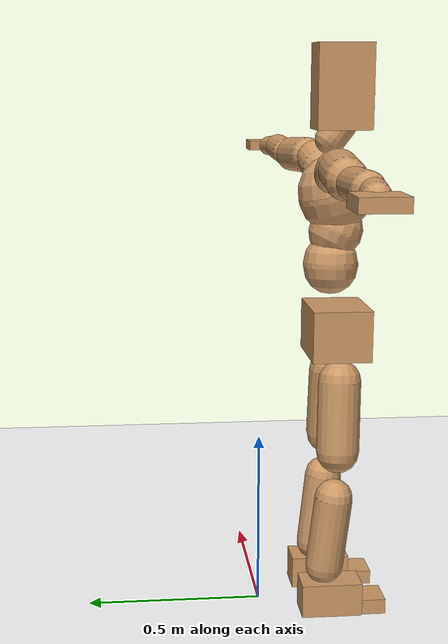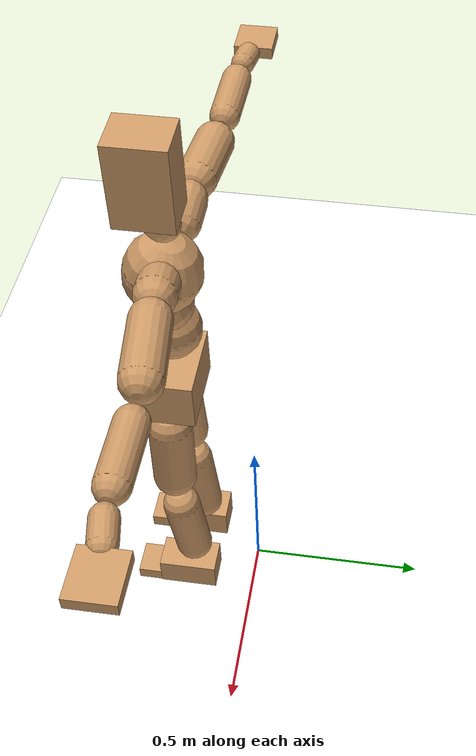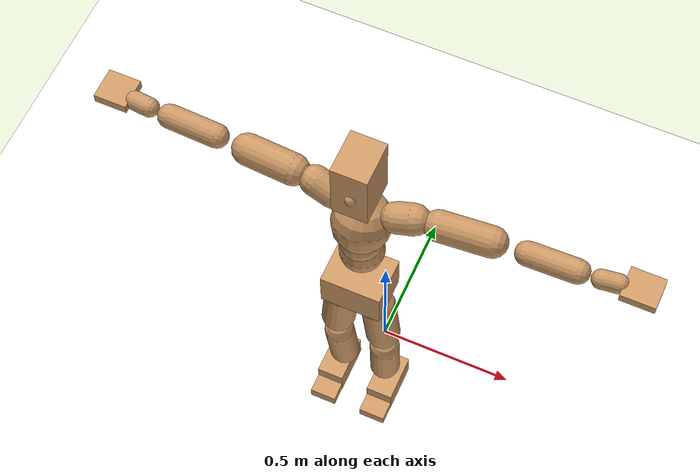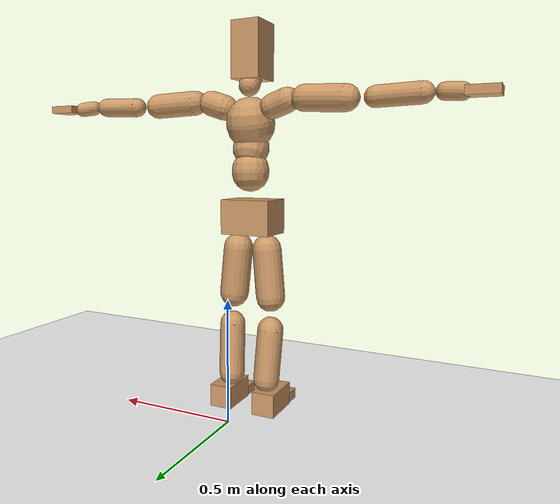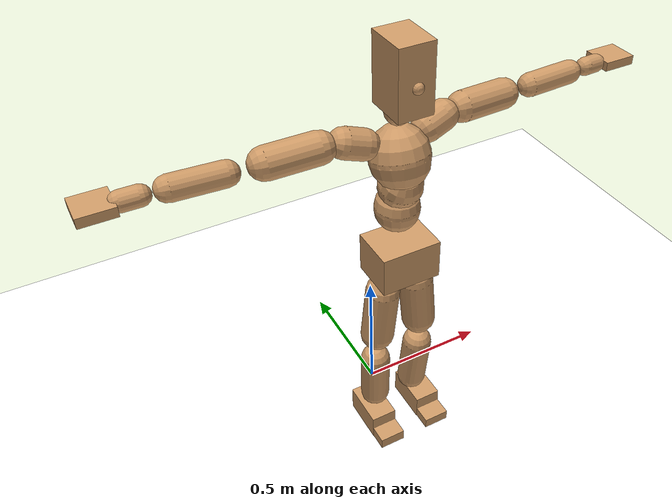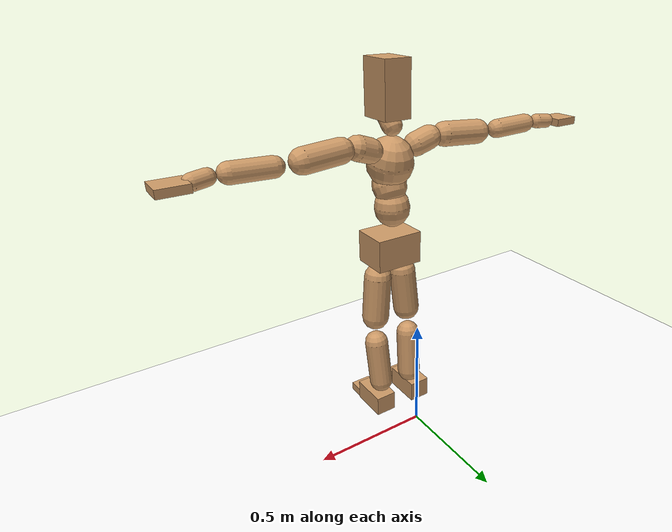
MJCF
<mujoco model="humanoid">
  <option integrator="implicitfast" />

  <visual>
    <global offwidth="1280" offheight="960" />
    <headlight active="1" ambient="0.34 0.34 0.34" diffuse="0.5 0.5 0.5" />
  </visual>

  <default>
    <joint damping="2" stiffness="2" armature="0.01" limited="true" solimplimit="0 .99 .01" />
    <geom condim="1" friction="0.7 0.005 0.0001" solimp=".99 .99 .003" solref="0.015 1" margin="0.001" rgba="0.8 0.6 .4 1" />
    <default class="smplcontact">
      <geom condim="3" friction="1. 0.005 0.0001" solref="0.015 1" solimp="0.98 0.98 0.001" priority="1" />
    </default>
    <default class="stiff_medium">
      <joint stiffness="10" />
    </default>
    <default class="stiff_medium_higher">
      <joint stiffness="50" />
    </default>
    <default class="stiff_high">
      <joint stiffness="100" />
    </default>
  </default>

  <asset>
    <texture type="skybox" builtin="gradient" rgb1="0.99 0.99 0.99" rgb2="0.608 0.828 0.892" width="100" />
    <texture builtin="flat" height="1278" mark="cross" markrgb="1 1 1" name="texgeom" random="0.01" rgb1="0.8 0.6 0.4" rgb2="0.8 0.6 0.4" type="cube" width="127" />
    <texture name="texplane" type="2d" builtin="checker" markrgb="1 1 1" rgb1="0.756 0.772 0.76" rgb2="0.6 0.6 0.6" width="100" height="100" />
    <material name="MatPlane" reflectance="0.5" texture="texplane" texrepeat="1 1" texuniform="true" />
    <material name="geom" texture="texgeom" texuniform="true" />
  </asset>

  <worldbody>
    <light name="tracking_light" pos="0 0 7" dir="0 0 -1" directional="true" cutoff="100" exponent="1" diffuse="1 1 1" specular="0.1 0.1 0.1" mode="trackcom" />
    <camera name="back" pos="0 3 2.4" xyaxes="-1 0 0 0 -1 2" mode="trackcom" />
    <camera name="side" pos="-3 0 2.4" xyaxes="0 -1 0 1 0 2" mode="trackcom" />
    <camera name="front_side" pos="-2.8 -2.8 0.8" xyaxes="0.5 -0.5 0 0.1 0.1 1" mode="trackcom" />
    <geom condim="3" name="floor" pos="0 0 0" rgba="1 1 1 1" size="100 100 .2" type="plane" material="MatPlane" />
    <body name="Pelvis" pos="-0.0018 -0.2233 0.825587" euler="90 0 0">
      <site name="Pelvis" size="0.01" />
      <freejoint name="Pelvis" />
      <geom type="box" pos="-0.0000 -0.0121 -0.0055" size="0.1069 0.0722 0.083" quat="1.0000 0.0000 0.0000 0.0000" density="3165.830099" name="Pelvis" />
      <body name="L_Hip" pos="0.0608125 -0.079975 -0.00595">
        <joint name="L_Hip_x" type="hinge" pos="0 0 0" axis="1 0 0" stiffness="8.018564387755102" range="-160.0 22.92" class="stiff_medium" damping="11.360360262787497" armature="0.007153277434128083"/>
        <joint name="L_Hip_y" type="hinge" pos="0 0 0" axis="0 1 0" stiffness="8.040343265306122" range="-70.0 70.0" class="stiff_medium" damping="8.207855033549667" armature="0.008378856726485999"/>
        <joint name="L_Hip_z" type="hinge" pos="0 0 0" axis="0 0 1" stiffness="8.038478673469386" range="-28.65 90.0" class="stiff_medium" damping="7.581991637464593" armature="0.0071514274685227155"/>
        <geom type="capsule" density="2040.816327" fromto="0.0060375 -0.065625 -0.0007875 0.023975 -0.262675 -0.00315" size="0.0615" name="L_Hip" />
        <body name="L_Knee" pos="0.0300125 -0.3283 -0.0039375">
          <joint name="L_Knee_x" type="hinge" pos="0 0 0" axis="1 0 0" range="-5.16 171.89" damping="6.187481263356624" armature="0.007345812746914755" stiffness="1.6286882448979592"/>
          <joint name="L_Knee_y" type="hinge" pos="0 0 0" axis="0 1 0" range="-4.58 6.88" damping="6.664577128501176" armature="0.008600571968275737" stiffness="1.6138675306122447"/>
          <joint name="L_Knee_z" type="hinge" pos="0 0 0" axis="0 0 1" range="-6.88 4.58" damping="6.195974658750661" armature="0.007336542514311982" stiffness="1.635226244897959"/>
          <geom type="capsule" density="1234.567901" fromto="-0.0023625 -0.06965 -0.0076125 -0.0095375 -0.2786 -0.030625" size="0.0541" name="L_Knee" />
          <body name="L_Ankle" pos="-0.0119 -0.34825 -0.0382375">
            <joint name="L_Ankle_x" type="hinge" pos="0 0 0" axis="1 0 0" range="-45.84 45.84" class="stiff_medium" damping="5.161808139893109" armature="0.008458478225834428" stiffness="8.750018673469388"/>
            <joint name="L_Ankle_y" type="hinge" pos="0 0 0" axis="0 1 0" range="-74.48 22.92" class="stiff_medium" damping="2.5896377165389355" armature="0.008515827848834851" stiffness="8.750011836734695"/>
            <joint name="L_Ankle_z" type="hinge" pos="0 0 0" axis="0 0 1" range="-4.58 4.58" class="stiff_medium" damping="5.292201995620587" armature="0.008891238718238261" stiffness="8.75"/>
            <geom type="box" pos="0.0203875 -0.0209125 0.021175" size="0.0483 0.0464 0.085" quat="1.0000 0.0000 0.0000 0.0000" density="449.071558" name="L_Ankle" class="smplcontact" />
            <body name="L_Toe" pos="0.0231 -0.048825 0.104388">
              <joint name="L_Toe_x" type="hinge" pos="0 0 0" axis="1 0 0" range="-91.67 22.92" armature="0.009108934582591792" damping="1.7855327227209046" stiffness="1.75"/>
              <joint name="L_Toe_y" type="hinge" pos="0 0 0" axis="0 1 0" range="-4.58 4.58" armature="0.009372172477213336" damping="1.811148908020726" stiffness="1.75"/>
              <joint name="L_Toe_z" type="hinge" pos="0 0 0" axis="0 0 1" range="-4.58 4.58" armature="0.009904425331426178" damping="1.8618670376799633" stiffness="1.75"/>
              <geom type="box" pos="-0.002625 0.0048125 0.0217" size="0.0478 0.02 0.0496" quat="1.0000 0.0000 0.0000 0.0000" density="423.206892" name="L_Toe" class="smplcontact" />
            </body>
          </body>
        </body>
      </body>
      <body name="R_Hip" pos="-0.0592375 -0.0791875 -0.0037625">
        <joint name="R_Hip_x" type="hinge" pos="0 0 0" axis="1 0 0" stiffness="8.018564387755102" range="-160.0 22.92" class="stiff_medium" damping="11.360360262787497" armature="0.007153277434128083"/>
        <joint name="R_Hip_y" type="hinge" pos="0 0 0" axis="0 1 0" stiffness="8.040343265306122" range="-70.0 70.0" class="stiff_medium" damping="8.207855033549667" armature="0.008378856726485999"/>
        <joint name="R_Hip_z" type="hinge" pos="0 0 0" axis="0 0 1" stiffness="8.038478673469386" range="-90.0 28.65" class="stiff_medium" damping="7.581991637464593" armature="0.0071514274685227155"/>
        <geom type="capsule" density="2040.816327" fromto="-0.0067375 -0.0669375 -0.001575 -0.026775 -0.267838 -0.0062125" size="0.0606" name="R_Hip" />
        <body name="R_Knee" pos="-0.0335125 -0.334775 -0.0077875">
          <joint name="R_Knee_x" type="hinge" pos="0 0 0" axis="1 0 0" range="-5.16 171.89" damping="6.187481263356624" armature="0.007345812746914755" stiffness="1.6286882448979592"/>
          <joint name="R_Knee_y" type="hinge" pos="0 0 0" axis="0 1 0" range="-6.88 4.58" damping="6.664577128501176" armature="0.008600571968275737" stiffness="1.6138675306122447"/>
          <joint name="R_Knee_z" type="hinge" pos="0 0 0" axis="0 0 1" range="-4.58 6.88" damping="6.195974658750661" armature="0.007336542514311982" stiffness="1.635226244897959"/>
          <geom type="capsule" density="1234.567901" fromto="0.0028 -0.0697375 -0.0074375 0.011025 -0.278863 -0.029575" size="0.0541" name="R_Knee" />
          <body name="R_Ankle" pos="0.013825 -0.3486 -0.0370125">
            <joint name="R_Ankle_x" type="hinge" pos="0 0 0" axis="1 0 0" range="-45.84 45.84" class="stiff_medium" damping="5.161808139893109" armature="0.008458478225834428" stiffness="8.750018673469388"/>
            <joint name="R_Ankle_y" type="hinge" pos="0 0 0" axis="0 1 0" range="-22.92 74.48" class="stiff_medium" damping="2.5896377165389355" armature="0.008515827848834851" stiffness="8.750011836734695"/>
            <joint name="R_Ankle_z" type="hinge" pos="0 0 0" axis="0 0 1" range="-4.58 4.58" class="stiff_medium" damping="5.292201995620587" armature="0.008891238718238261" stiffness="8.75"/>
            <geom type="box" pos="-0.01855 -0.015225 0.0224" size="0.0483 0.0478 0.0865" quat="1.0000 0.0000 0.0000 0.0000" density="434.700981" name="R_Ankle" class="smplcontact" />
            <body name="R_Toe" pos="-0.022225 -0.0420875 0.107888">
              <joint name="R_Toe_x" type="hinge" pos="0 0 0" axis="1 0 0" range="-91.67 22.92" armature="0.009108934582591792" damping="1.7855327227209046" stiffness="1.75"/>
              <joint name="R_Toe_y" type="hinge" pos="0 0 0" axis="0 1 0" range="-4.58 4.58" armature="0.009372172477213336" damping="1.811148908020726" stiffness="1.75"/>
              <joint name="R_Toe_z" type="hinge" pos="0 0 0" axis="0 0 1" range="-4.58 4.58" armature="0.009904425331426178" damping="1.8618670376799633" stiffness="1.75"/>
              <geom type="box" pos="0.003675 0.0039375 0.0198625" size="0.0479 0.0216 0.0493" quat="1.0000 0.0000 0.0000 0.0000" density="407.384095" name="R_Toe" class="smplcontact" />
            </body>
          </body>
        </body>
      </body>
      <body name="Torso" pos="-0.0025 0.109 -0.0267">
        <joint name="Torso_x" type="hinge" pos="0 0 0" axis="1 0 0" range="-25.78 57.3" class="stiff_medium" damping="15.601174334598195" armature="0.010476265558935353" stiffness="10.325844081632653"/>
        <joint name="Torso_y" type="hinge" pos="0 0 0" axis="0 1 0" range="-57.3 57.3" class="stiff_high" damping="22.821338610517834" armature="0.012668353656497757" stiffness="102.77844897959183"/>
        <joint name="Torso_z" type="hinge" pos="0 0 0" axis="0 0 1" range="-34.38 34.38" class="stiff_high" damping="21.414857312023486" armature="0.011223378132891124" stiffness="102.15197872340424"/>
        <geom type="capsule" density="2040.816327" fromto="0.0025 0.0608 0.0005 0.003 0.0743 0.0006" size="0.0769" name="Torso" />
        <body name="Spine" pos="0.0055 0.1352 0.0011">
          <joint name="Spine_x" type="hinge" pos="0 0 0" axis="1 0 0" stiffness="10.390365918367348" range="-25.78 57.3" class="stiff_medium" damping="15.726774537984076" armature="0.010579519926301016"/>
          <joint name="Spine_y" type="hinge" pos="0 0 0" axis="0 1 0" stiffness="10.39918551020408" range="-57.3 57.3" class="stiff_high" damping="9.18896997574016" armature="0.012686866367473132"/>
          <joint name="Spine_z" type="hinge" pos="0 0 0" axis="0 0 1" stiffness="20.94420693877551" range="-34.38 34.38" class="stiff_high" damping="13.309204568844795" armature="0.011746481097584333"/>
          <geom type="capsule" density="2040.816327" fromto="0.0007 0.0238 0.0114 0.0008 0.0291 0.014" size="0.0755" name="Spine" />
          <body name="Chest" pos="0.0015 0.0529 0.0254">
            <joint name="Chest_x" type="hinge" pos="0 0 0" axis="1 0 0" stiffness="10.58973530612245" range="-25.78 57.3" class="stiff_medium" damping="15.923502909070246" armature="0.01064166541426727"/>
            <joint name="Chest_y" type="hinge" pos="0 0 0" axis="0 1 0" stiffness="11.123088958333334" range="-57.3 57.3" class="stiff_high" damping="9.504893386205909" armature="0.01269080336821822"/>
            <joint name="Chest_z" type="hinge" pos="0 0 0" axis="0 0 1" stiffness="21.003702448979592" range="-34.38 34.38" class="stiff_high" damping="13.458190566120908" armature="0.01197691572037479"/>
            <geom type="capsule" density="2040.816327" fromto="-0.0009 0.0682 -0.0173 -0.001 0.0833 -0.0212" size="0.1002" name="Chest" />
            <body name="Neck" pos="-0.0028 0.2139 -0.0429">
              <joint name="Neck_x" type="hinge" pos="0 0 0" axis="1 0 0" range="-28.65 57.3" class="stiff_medium_higher" damping="10.0" armature="0.01" stiffness="50.0"/>
              <joint name="Neck_y" type="hinge" pos="0 0 0" axis="0 1 0" range="-40.11 40.11" class="stiff_medium_higher" damping="10.0" armature="0.01" stiffness="50.0"/>
              <joint name="Neck_z" type="hinge" pos="0 0 0" axis="0 0 1" range="-40.11 40.11" class="stiff_medium_higher" damping="9.999999999999996" armature="0.009999999999999992" stiffness="50.0"/>
              <geom type="capsule" density="1000" fromto="0.001 0.013 0.0103 0.0041 0.052 0.0411" size="0.0436" name="Neck" />
              <body name="Head" pos="0.0052 0.065 0.0513">
                <joint name="Head_x" type="hinge" pos="0 0 0" axis="1 0 0" range="-28.65 57.3" class="stiff_medium_higher" damping="2.000000000000005" armature="0.010000000000000049" stiffness="50.0"/>
                <joint name="Head_y" type="hinge" pos="0 0 0" axis="0 1 0" range="-40.11 40.11" class="stiff_medium_higher" damping="2.0" armature="0.01" stiffness="50.0"/>
                <joint name="Head_z" type="hinge" pos="0 0 0" axis="0 0 1" range="-40.11 40.11" class="stiff_medium_higher" damping="2.000000000000002" armature="0.010000000000000024" stiffness="50.0"/>
                <geom type="box" pos="-0.0042 0.0876 -0.0116" size="0.0606 0.1154 0.076" quat="1.0000 0.0000 0.0000 0.0000" density="1018.069894" name="Head" />
                <geom type="capsule" name="nose" size="0.02 0.01" pos="0 0.07 0.05" quat="1 0 0 0" mass="0" contype="0" conaffinity="0" />
              </body>
            </body>
            <body name="L_Thorax" pos="0.08668 0.13387 -0.03751">
              <joint name="L_Thorax_x" type="hinge" pos="0 0 0" axis="1 0 0" range="-10.89 4.58" class="stiff_medium_higher" damping="23.48495305351723" armature="0.011814903262347106" stiffness="58.352468877551026"/>
              <joint name="L_Thorax_y" type="hinge" pos="0 0 0" axis="0 1 0" range="-28.65 17.19" class="stiff_medium_higher" damping="24.434884191521103" armature="0.012759387174304943" stiffness="58.49257857142858"/>
              <joint name="L_Thorax_z" type="hinge" pos="0 0 0" axis="0 0 1" range="-31.51 40.11" class="stiff_medium_higher" damping="24.435380867856832" armature="0.012760243243334086" stiffness="58.491032142857144"/>
              <geom type="capsule" density="1000" fromto="0.02002 0.00671 -0.00198 0.08008 0.02684 -0.00781" size="0.0521" name="L_Thorax" />
              <body name="L_Shoulder" pos="0.1001 0.03355 -0.00979">
                <joint name="L_Shoulder_x" type="hinge" pos="0 0 0" axis="1 0 0" range="-97.4 97.4" class="stiff_medium" damping="6.925509502213979" armature="0.01143614113174845" stiffness="11.64988"/>
                <joint name="L_Shoulder_y" type="hinge" pos="0 0 0" axis="0 1 0" range="-108.86 80.21" class="stiff_medium" damping="7.316560324521946" armature="0.01272235970311689" stiffness="11.68809530612245"/>
                <joint name="L_Shoulder_z" type="hinge" pos="0 0 0" axis="0 0 1" range="-97.4 85.94" class="stiff_medium" damping="7.3161640813468045" armature="0.012723435702067624" stiffness="11.685841020408162"/>
                <geom type="capsule" density="1000" fromto="0.05709 -0.00286 -0.00605 0.22847 -0.01122 -0.0242" size="0.0517" name="L_Shoulder" />
                <body name="L_Elbow" pos="0.28556 -0.01408 -0.03025">
                  <joint name="L_Elbow_x" type="hinge" pos="0 0 0" axis="1 0 0" range="-17.19 4.58" damping="5.6013963449448445" armature="0.010847020977712885" stiffness="2.314046673469388"/>
                  <joint name="L_Elbow_y" type="hinge" pos="0 0 0" axis="0 1 0" range="-180.0 17.19" damping="6.02379848090798" armature="0.012542680731684373" stiffness="2.3144110204081634"/>
                  <joint name="L_Elbow_z" type="hinge" pos="0 0 0" axis="0 0 1" range="-100.84 4.58" damping="6.024346472417807" armature="0.012548321640758902" stiffness="2.313791530612245"/>
                  <geom type="capsule" density="1000" fromto="0.05478 0.00198 -0.00022 0.21934 0.00792 -0.00099" size="0.0405" name="L_Elbow" />
                  <body name="L_Wrist" pos="0.27412 0.0099 -0.00132">
                    <joint name="L_Wrist_x" type="hinge" pos="0 0 0" axis="1 0 0" range="-180.0 22.92" armature="0.010707540477697494" damping="2.1901175856847654" stiffness="2.2398304489795917"/>
                    <joint name="L_Wrist_y" type="hinge" pos="0 0 0" axis="0 1 0" range="-17.19 17.19" armature="0.011962634992803567" damping="2.317938796584479" stiffness="2.245675918367347"/>
                    <joint name="L_Wrist_z" type="hinge" pos="0 0 0" axis="0 0 1" range="-22.92 22.92" armature="0.01203185682964623" damping="2.3234148559287946" stiffness="2.2433181632653056"/>
                    <geom type="capsule" density="1000" fromto="0.01848 -0.00176 -0.0033 0.07392 -0.00715 -0.0132" size="0.0318" name="L_Wrist" class="smplcontact" />
                    <body name="L_Hand" pos="0.0924 -0.00902 -0.01639">
                      <joint name="L_Hand_x" type="hinge" pos="0 0 0" axis="1 0 0" range="-17.19 17.19" armature="0.010091488937093013" damping="2.107191289921474" stiffness="2.1999999999999997"/>
                      <joint name="L_Hand_y" type="hinge" pos="0 0 0" axis="0 1 0" range="-51.57 51.57" armature="0.011106432471592782" damping="2.210617625800723" stiffness="2.1999999999999997"/>
                      <joint name="L_Hand_z" type="hinge" pos="0 0 0" axis="0 0 1" range="-91.67 91.67" armature="0.01137697953796951" damping="2.2373803871283453" stiffness="2.1999999999999997"/>
                      <geom type="box" pos="0.05423 0.0011 -0.00638" size="0.0585 0.0158 0.0538" quat="1.0000 0.0000 0.0000 0.0000" density="400.552564" name="L_Hand" class="smplcontact" />
                    </body>
                  </body>
                </body>
              </body>
            </body>
            <body name="R_Thorax" pos="-0.08998 0.13068 -0.04246">
              <joint name="R_Thorax_x" type="hinge" pos="0 0 0" axis="1 0 0" range="-10.89 4.58" class="stiff_medium_higher" damping="23.48495305351723" armature="0.011814903262347106" stiffness="58.352468877551026"/>
              <joint name="R_Thorax_y" type="hinge" pos="0 0 0" axis="0 1 0" range="-17.19 28.65" class="stiff_medium_higher" damping="24.434884191521103" armature="0.012759387174304943" stiffness="58.49257857142858"/>
              <joint name="R_Thorax_z" type="hinge" pos="0 0 0" axis="0 0 1" range="-40.11 31.51" class="stiff_medium_higher" damping="24.435380867856832" armature="0.012760243243334086" stiffness="58.491032142857144"/>
              <geom type="capsule" density="1000" fromto="-0.02112 0.00715 -0.00198 -0.08448 0.0286 -0.00803" size="0.0511" name="R_Thorax" />
              <body name="R_Shoulder" pos="-0.1056 0.03586 -0.01001">
                <joint name="R_Shoulder_x" type="hinge" pos="0 0 0" axis="1 0 0" range="-97.4 97.4" class="stiff_medium" damping="6.925509502213979" armature="0.01143614113174845" stiffness="11.64988"/>
                <joint name="R_Shoulder_y" type="hinge" pos="0 0 0" axis="0 1 0" range="-80.21 108.86" class="stiff_medium" damping="7.316560324521946" armature="0.01272235970311689" stiffness="11.68809530612245"/>
                <joint name="R_Shoulder_z" type="hinge" pos="0 0 0" axis="0 0 1" range="-85.94 97.4" class="stiff_medium" damping="7.3161640813468045" armature="0.012723435702067624" stiffness="11.685841020408162"/>
                <geom type="capsule" density="1000" fromto="-0.05577 -0.00297 -0.00473 -0.2233 -0.01177 -0.01881" size="0.0531" name="R_Shoulder" />
                <body name="R_Elbow" pos="-0.27907 -0.01463 -0.02354">
                  <joint name="R_Elbow_x" type="hinge" pos="0 0 0" axis="1 0 0" range="-17.19 4.58" damping="5.6013963449448445" armature="0.010847020977712885" stiffness="2.314046673469388"/>
                  <joint name="R_Elbow_y" type="hinge" pos="0 0 0" axis="0 1 0" range="-17.19 180.0" damping="6.02379848090798" armature="0.012542680731684373" stiffness="2.3144110204081634"/>
                  <joint name="R_Elbow_z" type="hinge" pos="0 0 0" axis="0 0 1" range="-4.58 100.84" damping="6.024346472417807" armature="0.012548321640758902" stiffness="2.313791530612245"/>
                  <geom type="capsule" density="1000" fromto="-0.05621 0.00176 -0.00121 -0.22462 0.00682 -0.00484" size="0.0408" name="R_Elbow" />
                  <body name="R_Wrist" pos="-0.28083 0.00858 -0.00616">
                    <joint name="R_Wrist_x" type="hinge" pos="0 0 0" axis="1 0 0" range="-180.0 22.92" armature="0.010707540477697494" damping="2.1901175856847654" stiffness="2.2398304489795917"/>
                    <joint name="R_Wrist_y" type="hinge" pos="0 0 0" axis="0 1 0" range="-17.19 17.19" armature="0.011962634992803567" damping="2.317938796584479" stiffness="2.245675918367347"/>
                    <joint name="R_Wrist_z" type="hinge" pos="0 0 0" axis="0 0 1" range="-22.92 22.92" armature="0.01203185682964623" damping="2.3234148559287946" stiffness="2.2433181632653056"/>
                    <geom type="capsule" density="1000" fromto="-0.01859 -0.00132 -0.00231 -0.07447 -0.00539 -0.00913" size="0.0326" name="R_Wrist" class="smplcontact" />
                    <body name="R_Hand" pos="-0.09306 -0.00671 -0.01133">
                      <joint name="R_Hand_x" type="hinge" pos="0 0 0" axis="1 0 0" range="-17.19 17.19" armature="0.010091488937093013" damping="2.107191289921474" stiffness="2.1999999999999997"/>
                      <joint name="R_Hand_y" type="hinge" pos="0 0 0" axis="0 1 0" range="-51.57 51.57" armature="0.011106432471592782" damping="2.210617625800723" stiffness="2.1999999999999997"/>
                      <joint name="R_Hand_z" type="hinge" pos="0 0 0" axis="0 0 1" range="-91.67 91.67" armature="0.01137697953796951" damping="2.2373803871283453" stiffness="2.1999999999999997"/>
                      <geom type="box" pos="-0.05082 -0.00099 -0.00869" size="0.0569 0.0164 0.0546" quat="1.0000 0.0000 0.0000 0.0000" density="403.679611" name="R_Hand" class="smplcontact" />
                    </body>
                  </body>
                </body>
              </body>
            </body>
          </body>
        </body>
      </body>
    </body>
  </worldbody>
  <actuator>
    <general name="L_Hip_x" joint="L_Hip_x" biastype="affine" gainprm="230.3974619502181" biasprm="-172.65954561631258 -144.33415897959185 -1.5147147017049996" ctrllimited="true" ctrlrange="-1 1" forcerange="-288.6683179591837 288.6683179591837" />
    <general name="L_Hip_y" joint="L_Hip_y" biastype="affine" gainprm="176.8163833423812" biasprm="0.0 -144.7261787755102 -1.6415710067099334" ctrllimited="true" ctrlrange="-1 1" forcerange="-289.4523575510204 289.4523575510204" />
    <general name="L_Hip_z" joint="L_Hip_z" biastype="affine" gainprm="149.81713355526176" biasprm="77.4654963642251 -144.69261612244895 -1.5163983274929185" ctrllimited="true" ctrlrange="-1 1" forcerange="-289.3852322448979 289.3852322448979" />
    <general name="L_Knee_x" joint="L_Knee_x" biastype="affine" gainprm="226.4768283011216" biasprm="213.27580673621011 -146.58194204081633 -1.546870315839156" ctrllimited="true" ctrlrange="-1 1" forcerange="-293.16388408163266 293.16388408163266" />
    <general name="L_Knee_y" joint="L_Knee_y" biastype="affine" gainprm="14.525877693080384" biasprm="2.915315767372154 -145.24807775510203 -1.666144282125294" ctrllimited="true" ctrlrange="-1 1" forcerange="-290.49615551020406 290.49615551020406" />
    <general name="L_Knee_z" joint="L_Knee_z" biastype="affine" gainprm="14.718120281465588" biasprm="-2.953898485808975 -147.17036204081631 -1.5489936646876652" ctrllimited="true" ctrlrange="-1 1" forcerange="-294.34072408163263 294.34072408163263" />
    <general name="L_Ankle_x" joint="L_Ankle_x" biastype="affine" gainprm="63.0047751266266" biasprm="0.0 -78.75016806122449 -1.720602713297703" ctrllimited="true" ctrlrange="-1 1" forcerange="-157.50033612244897 157.50033612244897" />
    <general name="L_Ankle_y" joint="L_Ankle_y" biastype="affine" gainprm="66.93564902394152" biasprm="-35.43328607468609 -78.75010653061226 -1.7264251443592902" ctrllimited="true" ctrlrange="-1 1" forcerange="-157.5002130612245 157.5002130612245" />
    <general name="L_Ankle_z" joint="L_Ankle_z" biastype="affine" gainprm="6.294966279630548" biasprm="0.0 -78.75 -1.764067331873529" ctrllimited="true" ctrlrange="-1 1" forcerange="-157.5 157.5" />
    <general name="L_Toe_x" joint="L_Toe_x" biastype="affine" gainprm="62.999142880599514" biasprm="-37.797286613502195 -63.0 -0.7142130890883619" ctrllimited="true" ctrlrange="-1 1" forcerange="-126.0 126.0" />
    <general name="L_Toe_y" joint="L_Toe_y" biastype="affine" gainprm="5.035973023704439" biasprm="0.0 -63.0 -0.7244595632082904" ctrllimited="true" ctrlrange="-1 1" forcerange="-126.0 126.0" />
    <general name="L_Toe_z" joint="L_Toe_z" biastype="affine" gainprm="5.035973023704439" biasprm="0.0 -63.0 -0.7447468150719854" ctrllimited="true" ctrlrange="-1 1" forcerange="-126.0 126.0" />
    <general name="R_Hip_x" joint="R_Hip_x" biastype="affine" gainprm="230.3974619502181" biasprm="-172.65954561631258 -144.33415897959185 -1.5147147017049996" ctrllimited="true" ctrlrange="-1 1" forcerange="-288.6683179591837 288.6683179591837" />
    <general name="R_Hip_y" joint="R_Hip_y" biastype="affine" gainprm="176.8163833423812" biasprm="0.0 -144.7261787755102 -1.6415710067099334" ctrllimited="true" ctrlrange="-1 1" forcerange="-289.4523575510204 289.4523575510204" />
    <general name="R_Hip_z" joint="R_Hip_z" biastype="affine" gainprm="149.81713355526176" biasprm="-77.4654963642251 -144.69261612244895 -1.5163983274929185" ctrllimited="true" ctrlrange="-1 1" forcerange="-289.3852322448979 289.3852322448979" />
    <general name="R_Knee_x" joint="R_Knee_x" biastype="affine" gainprm="226.4768283011216" biasprm="213.27580673621011 -146.58194204081633 -1.546870315839156" ctrllimited="true" ctrlrange="-1 1" forcerange="-293.16388408163266 293.16388408163266" />
    <general name="R_Knee_y" joint="R_Knee_y" biastype="affine" gainprm="14.525877693080384" biasprm="-2.915315767372154 -145.24807775510203 -1.666144282125294" ctrllimited="true" ctrlrange="-1 1" forcerange="-290.49615551020406 290.49615551020406" />
    <general name="R_Knee_z" joint="R_Knee_z" biastype="affine" gainprm="14.718120281465588" biasprm="2.953898485808975 -147.17036204081631 -1.5489936646876652" ctrllimited="true" ctrlrange="-1 1" forcerange="-294.34072408163263 294.34072408163263" />
    <general name="R_Ankle_x" joint="R_Ankle_x" biastype="affine" gainprm="63.0047751266266" biasprm="0.0 -78.75016806122449 -1.720602713297703" ctrllimited="true" ctrlrange="-1 1" forcerange="-157.50033612244897 157.50033612244897" />
    <general name="R_Ankle_y" joint="R_Ankle_y" biastype="affine" gainprm="66.93564902394152" biasprm="35.43328607468609 -78.75010653061226 -1.7264251443592902" ctrllimited="true" ctrlrange="-1 1" forcerange="-157.5002130612245 157.5002130612245" />
    <general name="R_Ankle_z" joint="R_Ankle_z" biastype="affine" gainprm="6.294966279630548" biasprm="0.0 -78.75 -1.764067331873529" ctrllimited="true" ctrlrange="-1 1" forcerange="-157.5 157.5" />
    <general name="R_Toe_x" joint="R_Toe_x" biastype="affine" gainprm="62.999142880599514" biasprm="-37.797286613502195 -63.0 -0.7142130890883619" ctrllimited="true" ctrlrange="-1 1" forcerange="-126.0 126.0" />
    <general name="R_Toe_y" joint="R_Toe_y" biastype="affine" gainprm="5.035973023704439" biasprm="0.0 -63.0 -0.7244595632082904" ctrllimited="true" ctrlrange="-1 1" forcerange="-126.0 126.0" />
    <general name="R_Toe_z" joint="R_Toe_z" biastype="affine" gainprm="5.035973023704439" biasprm="0.0 -63.0 -0.7447468150719854" ctrllimited="true" ctrlrange="-1 1" forcerange="-126.0 126.0" />
    <general name="Torso_x" joint="Torso_x" biastype="affine" gainprm="179.67210854115288" biasprm="68.16640420338393 -247.8202579591837 -4.160313155892852" ctrllimited="true" ctrlrange="-1 1" forcerange="-371.73038693877555 371.73038693877555" />
    <general name="Torso_y" joint="Torso_y" biastype="affine" gainprm="246.68644747989222" biasprm="0.0 -246.6682775510204 -4.564267722103567" ctrllimited="true" ctrlrange="-1 1" forcerange="-370.0024163265306 370.0024163265306" />
    <general name="Torso_z" joint="Torso_z" biastype="affine" gainprm="147.10968486781817" biasprm="0.0 -245.16474893617018 -4.2829714624046975" ctrllimited="true" ctrlrange="-1 1" forcerange="-367.74712340425526 367.74712340425526" />
    <general name="Spine_x" joint="Spine_x" biastype="affine" gainprm="180.79480363139655" biasprm="68.5923472612135 -249.36878204081634 -4.19380654346242" ctrllimited="true" ctrlrange="-1 1" forcerange="-374.0531730612245 374.0531730612245" />
    <general name="Spine_y" joint="Spine_y" biastype="affine" gainprm="249.59883668861366" biasprm="0.0 -249.58045224489794 -4.59448498787008" ctrllimited="true" ctrlrange="-1 1" forcerange="-374.3706783673469 374.3706783673469" />
    <general name="Spine_z" joint="Spine_z" biastype="affine" gainprm="150.8093979712465" biasprm="0.0 -251.3304832653061 -4.436401522948265" ctrllimited="true" ctrlrange="-1 1" forcerange="-376.9957248979592 376.9957248979592" />
    <general name="Chest_x" joint="Chest_x" biastype="affine" gainprm="184.26387773258654" biasprm="69.90849092598852 -254.15364734693878 -4.246267442418732" ctrllimited="true" ctrlrange="-1 1" forcerange="-381.2304710204082 381.2304710204082" />
    <general name="Chest_y" joint="Chest_y" biastype="affine" gainprm="266.97379921338467" biasprm="0.0 -266.954135 -4.7524466931029545" ctrllimited="true" ctrlrange="-1 1" forcerange="-400.43120250000004 400.43120250000004" />
    <general name="Chest_z" joint="Chest_z" biastype="affine" gainprm="151.23779719887534" biasprm="0.0 -252.0444293877551 -4.486063522040303" ctrllimited="true" ctrlrange="-1 1" forcerange="-378.06664408163266 378.06664408163266" />
    <general name="Neck_x" joint="Neck_x" biastype="affine" gainprm="27.00198885760427" biasprm="9.000662952534757 -36.0 -0.8" ctrllimited="true" ctrlrange="-1 1" forcerange="-72.0 72.0" />
    <general name="Neck_y" joint="Neck_y" biastype="affine" gainprm="25.20185626709732" biasprm="0.0 -36.0 -0.8" ctrllimited="true" ctrlrange="-1 1" forcerange="-72.0 72.0" />
    <general name="Neck_z" joint="Neck_z" biastype="affine" gainprm="25.20185626709732" biasprm="0.0 -36.0 -0.7999999999999997" ctrllimited="true" ctrlrange="-1 1" forcerange="-72.0 72.0" />
    <general name="Head_x" joint="Head_x" biastype="affine" gainprm="18.001325905069514" biasprm="6.000441968356505 -24.0 -0.800000000000002" ctrllimited="true" ctrlrange="-1 1" forcerange="-48.0 48.0" />
    <general name="Head_y" joint="Head_y" biastype="affine" gainprm="16.801237511398213" biasprm="0.0 -24.0 -0.8" ctrllimited="true" ctrlrange="-1 1" forcerange="-48.0 48.0" />
    <general name="Head_z" joint="Head_z" biastype="affine" gainprm="16.801237511398213" biasprm="0.0 -24.0 -0.8000000000000009" ctrllimited="true" ctrlrange="-1 1" forcerange="-48.0 48.0" />
    <general name="L_Thorax_x" joint="L_Thorax_x" biastype="affine" gainprm="18.906370442093692" biasprm="-7.711648189373708 -140.04592530612246 -1.8787962442813786" ctrllimited="true" ctrlrange="-1 1" forcerange="-280.0918506122449 280.0918506122449" />
    <general name="L_Thorax_y" joint="L_Thorax_y" biastype="affine" gainprm="56.157011727582464" biasprm="-14.039252931895616 -140.38218857142857 -1.9547907353216882" ctrllimited="true" ctrlrange="-1 1" forcerange="-280.76437714285714 280.76437714285714" />
    <general name="L_Thorax_z" joint="L_Thorax_z" biastype="affine" gainprm="87.73688584405964" biasprm="10.535286487837375 -140.37847714285715 -1.9548304694285468" ctrllimited="true" ctrlrange="-1 1" forcerange="-280.7569542857143 280.7569542857143" />
    <general name="L_Shoulder_x" joint="L_Shoulder_x" biastype="affine" gainprm="95.06026349386505" biasprm="0.0 -55.91942399999999 -1.8468025339237277" ctrllimited="true" ctrlrange="-1 1" forcerange="-111.83884799999998 111.83884799999998" />
    <general name="L_Shoulder_y" joint="L_Shoulder_y" biastype="affine" gainprm="92.56674184278414" biasprm="-14.026747521001564 -56.10285746938776 -1.9510827532058526" ctrllimited="true" ctrlrange="-1 1" forcerange="-112.20571493877551 112.20571493877551" />
    <general name="L_Shoulder_z" joint="L_Shoulder_z" biastype="affine" gainprm="89.7440800375507" biasprm="-5.609616871551944 -56.09203689795918 -1.950977088359148" ctrllimited="true" ctrlrange="-1 1" forcerange="-112.18407379591837 112.18407379591837" />
    <general name="L_Elbow_x" joint="L_Elbow_x" biastype="affine" gainprm="15.82633724808071" biasprm="-9.167207749117953 -83.30568024489797 -0.8962234151911752" ctrllimited="true" ctrlrange="-1 1" forcerange="-166.61136048979594 166.61136048979594" />
    <general name="L_Elbow_y" joint="L_Elbow_y" biastype="affine" gainprm="143.37559998082332" biasprm="-118.37811974683223 -83.31879673469388 -0.9638077569452769" ctrllimited="true" ctrlrange="-1 1" forcerange="-166.63759346938775 166.63759346938775" />
    <general name="L_Elbow_z" joint="L_Elbow_z" biastype="affine" gainprm="76.62969758228138" biasprm="-69.9713023076305 -83.29649510204082 -0.9638954355868491" ctrllimited="true" ctrlrange="-1 1" forcerange="-166.59299020408164 166.59299020408164" />
    <general name="L_Wrist_x" joint="L_Wrist_x" biastype="affine" gainprm="23.797899177015026" biasprm="-18.421910125791054 -13.43898269387755 -0.8760470342739062" ctrllimited="true" ctrlrange="-1 1" forcerange="-26.8779653877551 26.8779653877551" />
    <general name="L_Wrist_y" joint="L_Wrist_y" biastype="affine" gainprm="4.042514408369691" biasprm="0.0 -13.474055510204082 -0.9271755186337917" ctrllimited="true" ctrlrange="-1 1" forcerange="-26.948111020408163 26.948111020408163" />
    <general name="L_Wrist_z" joint="L_Wrist_z" biastype="affine" gainprm="5.384360182093428" biasprm="0.0 -13.459908979591834 -0.9293659423715179" ctrllimited="true" ctrlrange="-1 1" forcerange="-26.919817959183668 26.919817959183668" />
    <general name="L_Hand_x" joint="L_Hand_x" biastype="affine" gainprm="3.9602916991152934" biasprm="0.0 -13.2 -0.8428765159685897" ctrllimited="true" ctrlrange="-1 1" forcerange="-26.4 26.4" />
    <general name="L_Hand_y" joint="L_Hand_y" biastype="affine" gainprm="11.880875097345879" biasprm="0.0 -13.2 -0.8842470503202892" ctrllimited="true" ctrlrange="-1 1" forcerange="-26.4 26.4" />
    <general name="L_Hand_z" joint="L_Hand_z" biastype="affine" gainprm="21.11925189400226" biasprm="0.0 -13.2 -0.8949521548513382" ctrllimited="true" ctrlrange="-1 1" forcerange="-26.4 26.4" />
    <general name="R_Thorax_x" joint="R_Thorax_x" biastype="affine" gainprm="18.906370442093692" biasprm="-7.711648189373708 -140.04592530612246 -1.8787962442813786" ctrllimited="true" ctrlrange="-1 1" forcerange="-280.0918506122449 280.0918506122449" />
    <general name="R_Thorax_y" joint="R_Thorax_y" biastype="affine" gainprm="56.157011727582464" biasprm="14.039252931895607 -140.38218857142857 -1.9547907353216882" ctrllimited="true" ctrlrange="-1 1" forcerange="-280.76437714285714 280.76437714285714" />
    <general name="R_Thorax_z" joint="R_Thorax_z" biastype="affine" gainprm="87.73688584405964" biasprm="-10.535286487837375 -140.37847714285715 -1.9548304694285468" ctrllimited="true" ctrlrange="-1 1" forcerange="-280.7569542857143 280.7569542857143" />
    <general name="R_Shoulder_x" joint="R_Shoulder_x" biastype="affine" gainprm="95.06026349386505" biasprm="0.0 -55.91942399999999 -1.8468025339237277" ctrllimited="true" ctrlrange="-1 1" forcerange="-111.83884799999998 111.83884799999998" />
    <general name="R_Shoulder_y" joint="R_Shoulder_y" biastype="affine" gainprm="92.56674184278414" biasprm="14.026747521001564 -56.10285746938776 -1.9510827532058526" ctrllimited="true" ctrlrange="-1 1" forcerange="-112.20571493877551 112.20571493877551" />
    <general name="R_Shoulder_z" joint="R_Shoulder_z" biastype="affine" gainprm="89.7440800375507" biasprm="5.609616871551932 -56.09203689795918 -1.950977088359148" ctrllimited="true" ctrlrange="-1 1" forcerange="-112.18407379591837 112.18407379591837" />
    <general name="R_Elbow_x" joint="R_Elbow_x" biastype="affine" gainprm="15.82633724808071" biasprm="-9.167207749117953 -83.30568024489797 -0.8962234151911752" ctrllimited="true" ctrlrange="-1 1" forcerange="-166.61136048979594 166.61136048979594" />
    <general name="R_Elbow_y" joint="R_Elbow_y" biastype="affine" gainprm="143.37559998082332" biasprm="118.37811974683223 -83.31879673469388 -0.9638077569452769" ctrllimited="true" ctrlrange="-1 1" forcerange="-166.63759346938775 166.63759346938775" />
    <general name="R_Elbow_z" joint="R_Elbow_z" biastype="affine" gainprm="76.62969758228138" biasprm="69.97130230763048 -83.29649510204082 -0.9638954355868491" ctrllimited="true" ctrlrange="-1 1" forcerange="-166.59299020408164 166.59299020408164" />
    <general name="R_Wrist_x" joint="R_Wrist_x" biastype="affine" gainprm="23.797899177015026" biasprm="-18.421910125791054 -13.43898269387755 -0.8760470342739062" ctrllimited="true" ctrlrange="-1 1" forcerange="-26.8779653877551 26.8779653877551" />
    <general name="R_Wrist_y" joint="R_Wrist_y" biastype="affine" gainprm="4.042514408369691" biasprm="0.0 -13.474055510204082 -0.9271755186337917" ctrllimited="true" ctrlrange="-1 1" forcerange="-26.948111020408163 26.948111020408163" />
    <general name="R_Wrist_z" joint="R_Wrist_z" biastype="affine" gainprm="5.384360182093428" biasprm="0.0 -13.459908979591834 -0.9293659423715179" ctrllimited="true" ctrlrange="-1 1" forcerange="-26.919817959183668 26.919817959183668" />
    <general name="R_Hand_x" joint="R_Hand_x" biastype="affine" gainprm="3.9602916991152934" biasprm="0.0 -13.2 -0.8428765159685897" ctrllimited="true" ctrlrange="-1 1" forcerange="-26.4 26.4" />
    <general name="R_Hand_y" joint="R_Hand_y" biastype="affine" gainprm="11.880875097345879" biasprm="0.0 -13.2 -0.8842470503202892" ctrllimited="true" ctrlrange="-1 1" forcerange="-26.4 26.4" />
    <general name="R_Hand_z" joint="R_Hand_z" biastype="affine" gainprm="21.11925189400226" biasprm="0.0 -13.2 -0.8949521548513382" ctrllimited="true" ctrlrange="-1 1" forcerange="-26.4 26.4" />
  </actuator>
  <contact>
    <exclude body1="Torso" body2="Chest" />
    <exclude body1="Head" body2="Chest" />
    <exclude body1="R_Knee" body2="R_Toe" />
    <exclude body1="R_Knee" body2="L_Ankle" />
    <exclude body1="R_Knee" body2="L_Toe" />
    <exclude body1="L_Knee" body2="L_Toe" />
    <exclude body1="L_Knee" body2="R_Ankle" />
    <exclude body1="L_Knee" body2="R_Toe" />
    <exclude body1="L_Shoulder" body2="Chest" />
    <exclude body1="R_Shoulder" body2="Chest" />
  </contact>
  <sensor>
    <framelinvel name="sensor_Pelvis_framelinvel" objtype="xbody" objname="Pelvis" />
    <framelinvel name="sensor_L_Hip_framelinvel" objtype="xbody" objname="L_Hip" />
    <framelinvel name="sensor_L_Knee_framelinvel" objtype="xbody" objname="L_Knee" />
    <framelinvel name="sensor_L_Ankle_framelinvel" objtype="xbody" objname="L_Ankle" />
    <framelinvel name="sensor_L_Toe_framelinvel" objtype="xbody" objname="L_Toe" />
    <framelinvel name="sensor_R_Hip_framelinvel" objtype="xbody" objname="R_Hip" />
    <framelinvel name="sensor_R_Knee_framelinvel" objtype="xbody" objname="R_Knee" />
    <framelinvel name="sensor_R_Ankle_framelinvel" objtype="xbody" objname="R_Ankle" />
    <framelinvel name="sensor_R_Toe_framelinvel" objtype="xbody" objname="R_Toe" />
    <framelinvel name="sensor_Torso_framelinvel" objtype="xbody" objname="Torso" />
    <framelinvel name="sensor_Spine_framelinvel" objtype="xbody" objname="Spine" />
    <framelinvel name="sensor_Chest_framelinvel" objtype="xbody" objname="Chest" />
    <framelinvel name="sensor_Neck_framelinvel" objtype="xbody" objname="Neck" />
    <framelinvel name="sensor_Head_framelinvel" objtype="xbody" objname="Head" />
    <framelinvel name="sensor_L_Thorax_framelinvel" objtype="xbody" objname="L_Thorax" />
    <framelinvel name="sensor_L_Shoulder_framelinvel" objtype="xbody" objname="L_Shoulder" />
    <framelinvel name="sensor_L_Elbow_framelinvel" objtype="xbody" objname="L_Elbow" />
    <framelinvel name="sensor_L_Wrist_framelinvel" objtype="xbody" objname="L_Wrist" />
    <framelinvel name="sensor_L_Hand_framelinvel" objtype="xbody" objname="L_Hand" />
    <framelinvel name="sensor_R_Thorax_framelinvel" objtype="xbody" objname="R_Thorax" />
    <framelinvel name="sensor_R_Shoulder_framelinvel" objtype="xbody" objname="R_Shoulder" />
    <framelinvel name="sensor_R_Elbow_framelinvel" objtype="xbody" objname="R_Elbow" />
    <framelinvel name="sensor_R_Wrist_framelinvel" objtype="xbody" objname="R_Wrist" />
    <framelinvel name="sensor_R_Hand_framelinvel" objtype="xbody" objname="R_Hand" />
    <frameangvel name="sensor_Pelvis_frameangvel" objtype="xbody" objname="Pelvis" />
    <frameangvel name="sensor_L_Hip_frameangvel" objtype="xbody" objname="L_Hip" />
    <frameangvel name="sensor_L_Knee_frameangvel" objtype="xbody" objname="L_Knee" />
    <frameangvel name="sensor_L_Ankle_frameangvel" objtype="xbody" objname="L_Ankle" />
    <frameangvel name="sensor_L_Toe_frameangvel" objtype="xbody" objname="L_Toe" />
    <frameangvel name="sensor_R_Hip_frameangvel" objtype="xbody" objname="R_Hip" />
    <frameangvel name="sensor_R_Knee_frameangvel" objtype="xbody" objname="R_Knee" />
    <frameangvel name="sensor_R_Ankle_frameangvel" objtype="xbody" objname="R_Ankle" />
    <frameangvel name="sensor_R_Toe_frameangvel" objtype="xbody" objname="R_Toe" />
    <frameangvel name="sensor_Torso_frameangvel" objtype="xbody" objname="Torso" />
    <frameangvel name="sensor_Spine_frameangvel" objtype="xbody" objname="Spine" />
    <frameangvel name="sensor_Chest_frameangvel" objtype="xbody" objname="Chest" />
    <frameangvel name="sensor_Neck_frameangvel" objtype="xbody" objname="Neck" />
    <frameangvel name="sensor_Head_frameangvel" objtype="xbody" objname="Head" />
    <frameangvel name="sensor_L_Thorax_frameangvel" objtype="xbody" objname="L_Thorax" />
    <frameangvel name="sensor_L_Shoulder_frameangvel" objtype="xbody" objname="L_Shoulder" />
    <frameangvel name="sensor_L_Elbow_frameangvel" objtype="xbody" objname="L_Elbow" />
    <frameangvel name="sensor_L_Wrist_frameangvel" objtype="xbody" objname="L_Wrist" />
    <frameangvel name="sensor_L_Hand_frameangvel" objtype="xbody" objname="L_Hand" />
    <frameangvel name="sensor_R_Thorax_frameangvel" objtype="xbody" objname="R_Thorax" />
    <frameangvel name="sensor_R_Shoulder_frameangvel" objtype="xbody" objname="R_Shoulder" />
    <frameangvel name="sensor_R_Elbow_frameangvel" objtype="xbody" objname="R_Elbow" />
    <frameangvel name="sensor_R_Wrist_frameangvel" objtype="xbody" objname="R_Wrist" />
    <frameangvel name="sensor_R_Hand_frameangvel" objtype="xbody" objname="R_Hand" />
    <subtreelinvel name="Chest_subtreelinvel" body="Chest" />
    <gyro name="Pelvis_gyro" site="Pelvis" />
  </sensor>
</mujoco>
